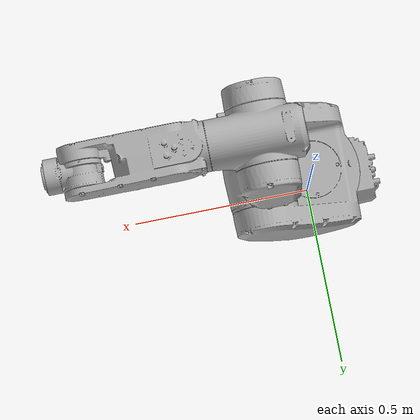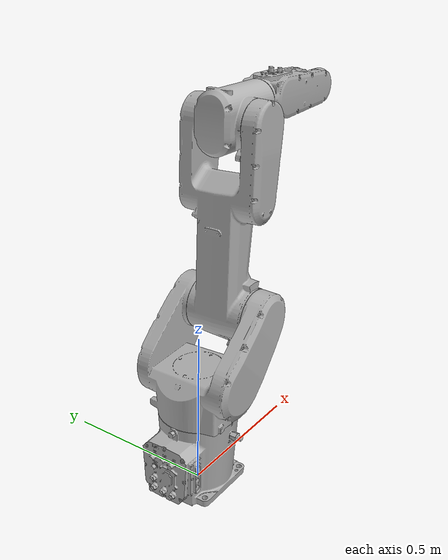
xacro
<?xml version="1.0" ?>
<robot name="IRB1300_10-1150-STD" xmlns:xacro="http://www.ros.org/wiki/xacro">

<xacro:include filename="$(find IRB1300_10-1150-STD_description)/urdf/materials.xacro" />
<xacro:include filename="$(find IRB1300_10-1150-STD_description)/urdf/IRB1300_10-1150-STD.trans" />
<xacro:include filename="$(find IRB1300_10-1150-STD_description)/urdf/IRB1300_10-1150-STD.gazebo" />
<link name="base_link">
  <inertial>
    <origin xyz="-0.022150462495591508 -0.0006435784904621686 0.12757819816402227" rpy="0 0 0"/>
    <mass value="103.55483852571481"/>
    <inertia ixx="0.88124" iyy="1.112059" izz="0.923682" ixy="-0.00573" iyz="0.000881" ixz="-0.026868"/>
  </inertial>
  <visual>
    <origin xyz="0 0 0" rpy="0 0 0"/>
    <geometry>
      <mesh filename="package://IRB1300_10-1150-STD_description/meshes/base_link.stl" scale="0.001 0.001 0.001"/>
    </geometry>
    <material name="silver"/>
  </visual>
  <collision>
    <origin xyz="0 0 0" rpy="0 0 0"/>
    <geometry>
      <mesh filename="package://IRB1300_10-1150-STD_description/meshes/base_link.stl" scale="0.001 0.001 0.001"/>
    </geometry>
  </collision>
</link>

<link name="link1_1400_v1_1">
  <inertial>
    <origin xyz="0.03791992519138535 -0.0007828926695919957 0.14588972495105984" rpy="0 0 0"/>
    <mass value="128.23181969848397"/>
    <inertia ixx="2.60849" iyy="1.993103" izz="2.33626" ixy="-0.01474" iyz="-0.015603" ixz="-0.578713"/>
  </inertial>
  <visual>
    <origin xyz="-0.0 -0.0 -0.254" rpy="0 0 0"/>
    <geometry>
      <mesh filename="package://IRB1300_10-1150-STD_description/meshes/link1_1400_v1_1.stl" scale="0.001 0.001 0.001"/>
    </geometry>
    <material name="silver"/>
  </visual>
  <collision>
    <origin xyz="-0.0 -0.0 -0.254" rpy="0 0 0"/>
    <geometry>
      <mesh filename="package://IRB1300_10-1150-STD_description/meshes/link1_1400_v1_1.stl" scale="0.001 0.001 0.001"/>
    </geometry>
  </collision>
</link>

<link name="link2_1150_v1_1">
  <inertial>
    <origin xyz="-0.010943214304762139 -0.0953337954027344 0.24498309991586187" rpy="0 0 0"/>
    <mass value="121.24087782437648"/>
    <inertia ixx="5.864157" iyy="5.441047" izz="0.811102" ixy="0.000556" iyz="-0.046876" ixz="0.022775"/>
  </inertial>
  <visual>
    <origin xyz="-0.15 -0.0945 -0.544" rpy="0 0 0"/>
    <geometry>
      <mesh filename="package://IRB1300_10-1150-STD_description/meshes/link2_1150_v1_1.stl" scale="0.001 0.001 0.001"/>
    </geometry>
    <material name="silver"/>
  </visual>
  <collision>
    <origin xyz="-0.15 -0.0945 -0.544" rpy="0 0 0"/>
    <geometry>
      <mesh filename="package://IRB1300_10-1150-STD_description/meshes/link2_1150_v1_1.stl" scale="0.001 0.001 0.001"/>
    </geometry>
  </collision>
</link>

<link name="link3_v1_1">
  <inertial>
    <origin xyz="0.005827015471299851 -0.07136244442560104 0.011391891178956559" rpy="0 0 0"/>
    <mass value="34.705682840402375"/>
    <inertia ixx="0.116412" iyy="0.203477" izz="0.177302" ixy="2.6e-05" iyz="-0.000865" ixz="-0.012149"/>
  </inertial>
  <visual>
    <origin xyz="-0.15 -0.07 -1.119" rpy="0 0 0"/>
    <geometry>
      <mesh filename="package://IRB1300_10-1150-STD_description/meshes/link3_v1_1.stl" scale="0.001 0.001 0.001"/>
    </geometry>
    <material name="silver"/>
  </visual>
  <collision>
    <origin xyz="-0.15 -0.07 -1.119" rpy="0 0 0"/>
    <geometry>
      <mesh filename="package://IRB1300_10-1150-STD_description/meshes/link3_v1_1.stl" scale="0.001 0.001 0.001"/>
    </geometry>
  </collision>
</link>

<link name="link4_900_v1_1">
  <inertial>
    <origin xyz="0.13875595078261788 -0.001365146609771385 0.0013053061872190241" rpy="0 0 0"/>
    <mass value="29.00831706687216"/>
    <inertia ixx="0.070663" iyy="0.247042" izz="0.258634" ixy="0.007111" iyz="-6e-06" ixz="0.001959"/>
  </inertial>
  <visual>
    <origin xyz="-0.2795 0.0 -1.159" rpy="0 0 0"/>
    <geometry>
      <mesh filename="package://IRB1300_10-1150-STD_description/meshes/link4_900_v1_1.stl" scale="0.001 0.001 0.001"/>
    </geometry>
    <material name="silver"/>
  </visual>
  <collision>
    <origin xyz="-0.2795 0.0 -1.159" rpy="0 0 0"/>
    <geometry>
      <mesh filename="package://IRB1300_10-1150-STD_description/meshes/link4_900_v1_1.stl" scale="0.001 0.001 0.001"/>
    </geometry>
  </collision>
</link>

<link name="link5-foundry_v1_1">
  <inertial>
    <origin xyz="0.02328401065607666 0.02759068302511393 0.00553535777564762" rpy="0 0 0"/>
    <mass value="4.746395424728338"/>
    <inertia ixx="0.004149" iyy="0.008564" izz="0.008188" ixy="0.000862" iyz="1e-06" ixz="2.3e-05"/>
  </inertial>
  <visual>
    <origin xyz="-0.574056 0.019 -1.153523" rpy="0 0 0"/>
    <geometry>
      <mesh filename="package://IRB1300_10-1150-STD_description/meshes/link5-foundry_v1_1.stl" scale="0.001 0.001 0.001"/>
    </geometry>
    <material name="silver"/>
  </visual>
  <collision>
    <origin xyz="-0.574056 0.019 -1.153523" rpy="0 0 0"/>
    <geometry>
      <mesh filename="package://IRB1300_10-1150-STD_description/meshes/link5-foundry_v1_1.stl" scale="0.001 0.001 0.001"/>
    </geometry>
  </collision>
</link>

<link name="link6-foundry_v1_1">
  <inertial>
    <origin xyz="0.0034625159857836207 5.415309820712119e-05 -8.030621183752196e-05" rpy="0 0 0"/>
    <mass value="0.13269866577885717"/>
    <inertia ixx="7.9e-05" iyy="4e-05" izz="4.1e-05" ixy="-0.0" iyz="0.0" ixz="0.0"/>
  </inertial>
  <visual>
    <origin xyz="-0.659 0.0 -1.159" rpy="0 0 0"/>
    <geometry>
      <mesh filename="package://IRB1300_10-1150-STD_description/meshes/link6-foundry_v1_1.stl" scale="0.001 0.001 0.001"/>
    </geometry>
    <material name="silver"/>
  </visual>
  <collision>
    <origin xyz="-0.659 0.0 -1.159" rpy="0 0 0"/>
    <geometry>
      <mesh filename="package://IRB1300_10-1150-STD_description/meshes/link6-foundry_v1_1.stl" scale="0.001 0.001 0.001"/>
    </geometry>
  </collision>
</link>

<joint name="j1" type="continuous">
  <origin xyz="0.0 0.0 0.254" rpy="0 0 0"/>
  <parent link="base_link"/>
  <child link="link1_1400_v1_1"/>
  <axis xyz="0.0 0.0 1.0"/>
</joint>

<joint name="j2" type="continuous">
  <origin xyz="0.15 0.0945 0.29" rpy="0 0 0"/>
  <parent link="link1_1400_v1_1"/>
  <child link="link2_1150_v1_1"/>
  <axis xyz="0.0 -1.0 0.0"/>
</joint>

<joint name="j3" type="continuous">
  <origin xyz="0.0 -0.0245 0.575" rpy="0 0 0"/>
  <parent link="link2_1150_v1_1"/>
  <child link="link3_v1_1"/>
  <axis xyz="-0.0 -1.0 0.0"/>
</joint>

<joint name="j4" type="continuous">
  <origin xyz="0.1295 -0.07 0.04" rpy="0 0 0"/>
  <parent link="link3_v1_1"/>
  <child link="link4_900_v1_1"/>
  <axis xyz="1.0 0.0 0.0"/>
</joint>

<joint name="j5" type="continuous">
  <origin xyz="0.294556 -0.019 -0.005477" rpy="0 0 0"/>
  <parent link="link4_900_v1_1"/>
  <child link="link5-foundry_v1_1"/>
  <axis xyz="0.0 -1.0 0.0"/>
</joint>

<joint name="j6" type="continuous">
  <origin xyz="0.084944 0.019 0.005477" rpy="0 0 0"/>
  <parent link="link5-foundry_v1_1"/>
  <child link="link6-foundry_v1_1"/>
  <axis xyz="1.0 0.0 0.0"/>
</joint>

</robot>

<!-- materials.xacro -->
<robot name="IRB1300_10-1150-STD" xmlns:xacro="http://www.ros.org/wiki/xacro" >

<material name="silver">
  <color rgba="0.700 0.700 0.700 1.000"/>
</material>

</robot>

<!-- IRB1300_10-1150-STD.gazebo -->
<robot name="IRB1300_10-1150-STD" xmlns:xacro="http://www.ros.org/wiki/xacro" >

<xacro:property name="body_color" value="Gazebo/Silver" />

<gazebo>
  <plugin name="control" filename="libgazebo_ros_control.so"/>
</gazebo>
<gazebo reference="base_link">
  <material>${body_color}</material>
  <mu1>0.2</mu1>
  <mu2>0.2</mu2>
  <selfCollide>true</selfCollide>
  <gravity>true</gravity>
</gazebo>

<gazebo reference="link1_1400_v1_1">
  <material>${body_color}</material>
  <mu1>0.2</mu1>
  <mu2>0.2</mu2>
  <selfCollide>true</selfCollide>
</gazebo>

<gazebo reference="link2_1150_v1_1">
  <material>${body_color}</material>
  <mu1>0.2</mu1>
  <mu2>0.2</mu2>
  <selfCollide>true</selfCollide>
</gazebo>

<gazebo reference="link3_v1_1">
  <material>${body_color}</material>
  <mu1>0.2</mu1>
  <mu2>0.2</mu2>
  <selfCollide>true</selfCollide>
</gazebo>

<gazebo reference="link4_900_v1_1">
  <material>${body_color}</material>
  <mu1>0.2</mu1>
  <mu2>0.2</mu2>
  <selfCollide>true</selfCollide>
</gazebo>

<gazebo reference="link5-foundry_v1_1">
  <material>${body_color}</material>
  <mu1>0.2</mu1>
  <mu2>0.2</mu2>
  <selfCollide>true</selfCollide>
</gazebo>

<gazebo reference="link6-foundry_v1_1">
  <material>${body_color}</material>
  <mu1>0.2</mu1>
  <mu2>0.2</mu2>
  <selfCollide>true</selfCollide>
</gazebo>

</robot>
